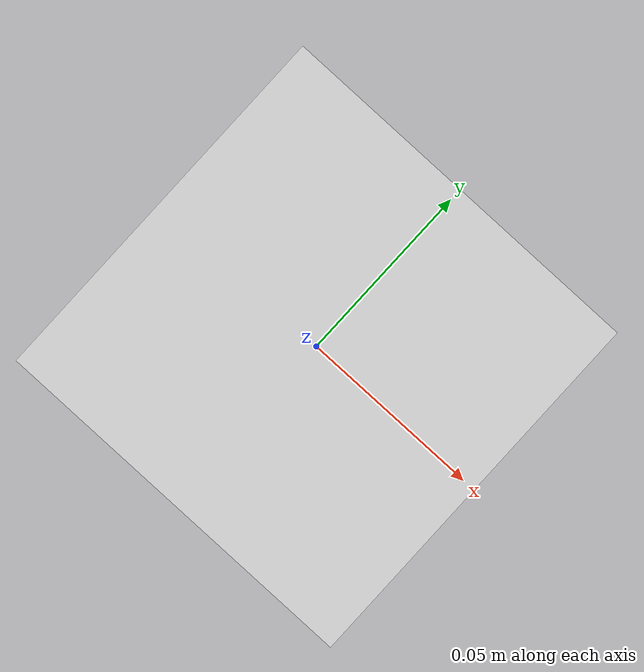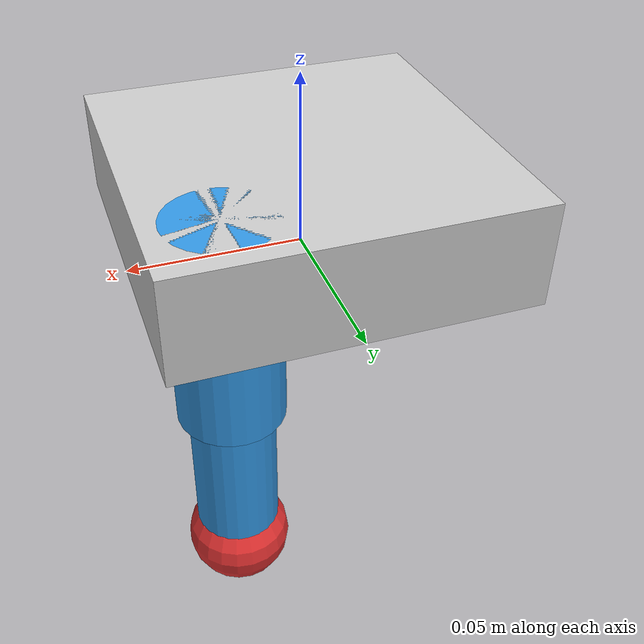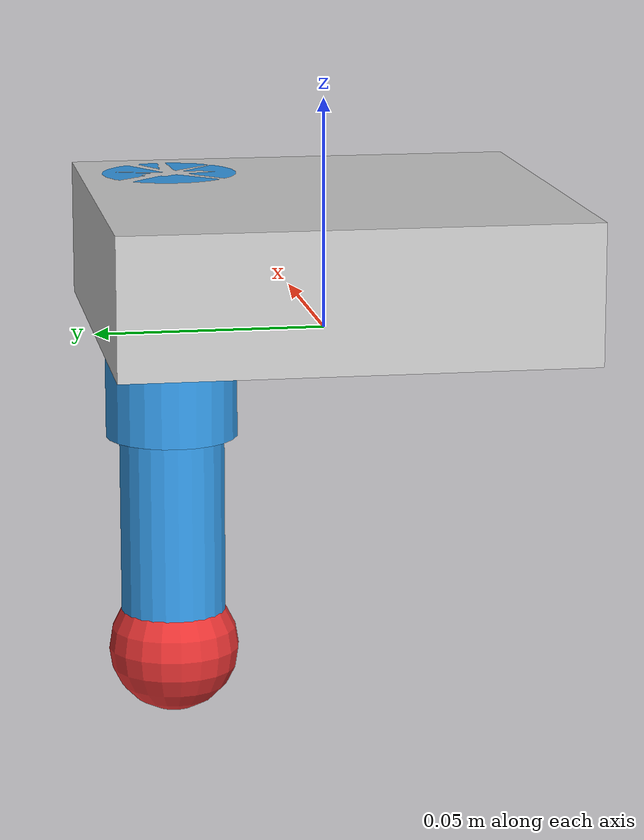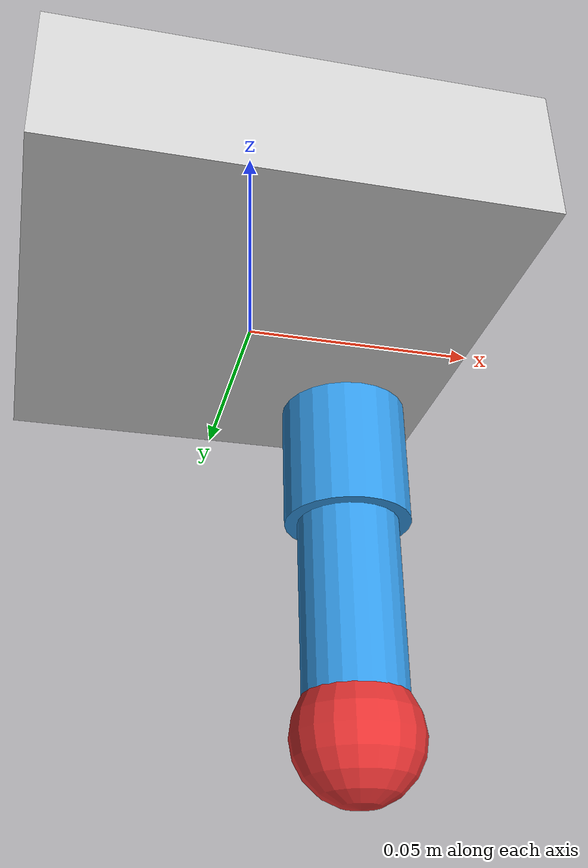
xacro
<?xml version="1.0"?>
<robot xmlns:xacro="http://www.ros.org/wiki/xacro" name="simple_hand">

  <!-- Colors -->
  <material name="palm_color"><color rgba="0.8 0.8 0.8 1.0"/></material>
  <material name="finger_color"><color rgba="0.2 0.6 0.9 1.0"/></material>
  <material name="tip_color"><color rgba="0.9 0.2 0.2 1.0"/></material>

  <!-- Base Link -->
  <link name="base_link"/>

  <!-- Palm -->
  <link name="palm">
    <visual>
      <geometry><box size="0.10 0.10 0.03"/></geometry>
      <material name="palm_color"/>
    </visual>
    <collision>
      <geometry><box size="0.10 0.10 0.03"/></geometry>
    </collision>
    <inertial>
      <mass value="0.5"/>
      <inertia ixx="0.001" iyy="0.001" izz="0.001" ixy="0" ixz="0" iyz="0"/>
    </inertial>
  </link>

  <joint name="base_to_palm" type="fixed">
    <parent link="base_link"/>
    <child link="palm"/>
    <origin xyz="0 0 0.015" rpy="0 0 0"/>
  </joint>

  <!-- Index Finger -->
  <link name="index_proximal">
    <visual>
      <geometry><cylinder radius="0.015" length="0.06"/></geometry>
      <origin xyz="0 0 -0.03" rpy="0 0 0"/>
      <material name="finger_color"/>
    </visual>
    <collision>
      <geometry><cylinder radius="0.015" length="0.06"/></geometry>
      <origin xyz="0 0 -0.03" rpy="0 0 0"/>
    </collision>
    <inertial>
      <mass value="0.1"/>
      <inertia ixx="0.0001" iyy="0.0001" izz="0.00005" ixy="0" ixz="0" iyz="0"/>
    </inertial>
  </link>

  <joint name="index_mcp" type="revolute">
    <parent link="palm"/>
    <child link="index_proximal"/>
    <origin xyz="0.03 0.03 0.015" rpy="0 0 0"/>
    <axis xyz="0 1 0"/>
    <limit lower="0.0" upper="1.5" effort="5.0" velocity="2.0"/>
  </joint>

  <link name="index_distal">
    <visual>
      <geometry><cylinder radius="0.012" length="0.05"/></geometry>
      <origin xyz="0 0 -0.025" rpy="0 0 0"/>
      <material name="finger_color"/>
    </visual>
    <collision>
      <geometry><cylinder radius="0.012" length="0.05"/></geometry>
      <origin xyz="0 0 -0.025" rpy="0 0 0"/>
    </collision>
    <inertial>
      <mass value="0.05"/>
      <inertia ixx="0.00005" iyy="0.00005" izz="0.00002" ixy="0" ixz="0" iyz="0"/>
    </inertial>
  </link>

  <joint name="index_pip" type="revolute">
    <parent link="index_proximal"/>
    <child link="index_distal"/>
    <origin xyz="0 0 -0.06" rpy="0 0 0"/>
    <axis xyz="0 1 0"/>
    <limit lower="0.0" upper="2.0" effort="5.0" velocity="2.0"/>
  </joint>

  <link name="index_tip">
    <visual>
      <geometry><sphere radius="0.015"/></geometry>
      <material name="tip_color"/>
    </visual>
    <collision>
      <geometry><sphere radius="0.015"/></geometry>
    </collision>
    <inertial>
      <mass value="0.02"/>
      <inertia ixx="0.00001" iyy="0.00001" izz="0.00001" ixy="0" ixz="0" iyz="0"/>
    </inertial>
  </link>

  <joint name="index_to_tip" type="fixed">
    <parent link="index_distal"/>
    <child link="index_tip"/>
    <origin xyz="0 0 -0.05" rpy="0 0 0"/>
  </joint>

</robot>
